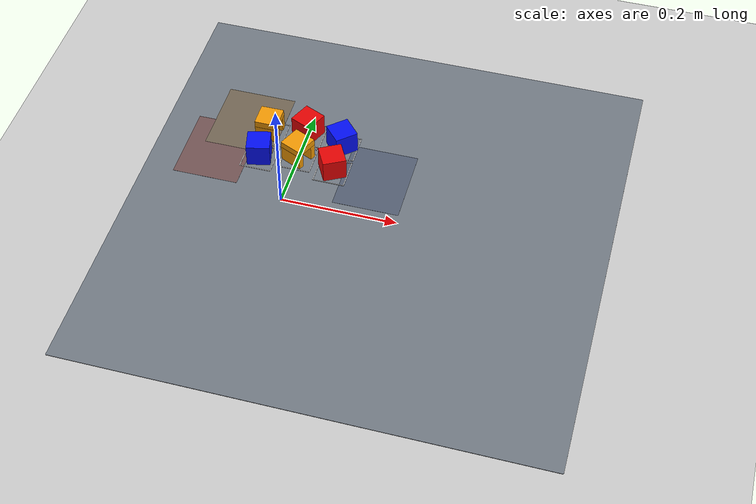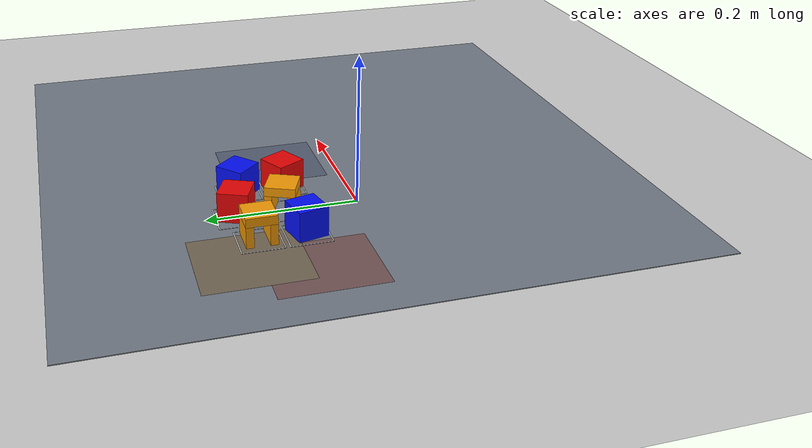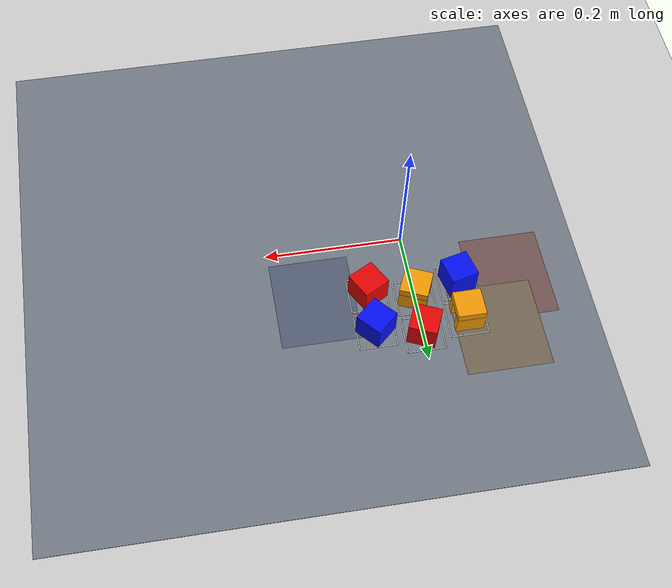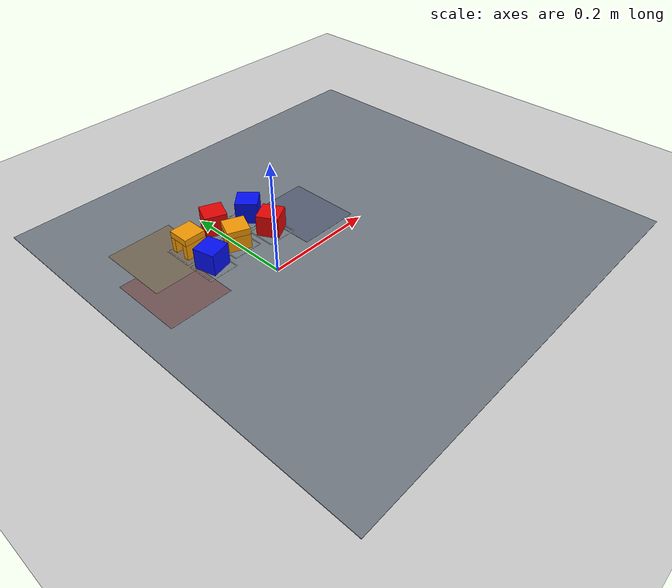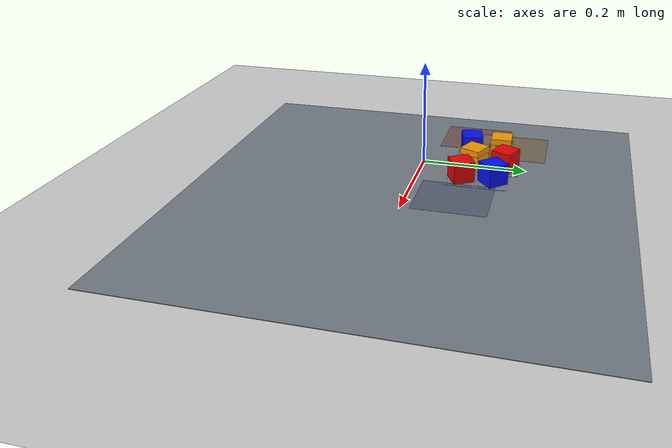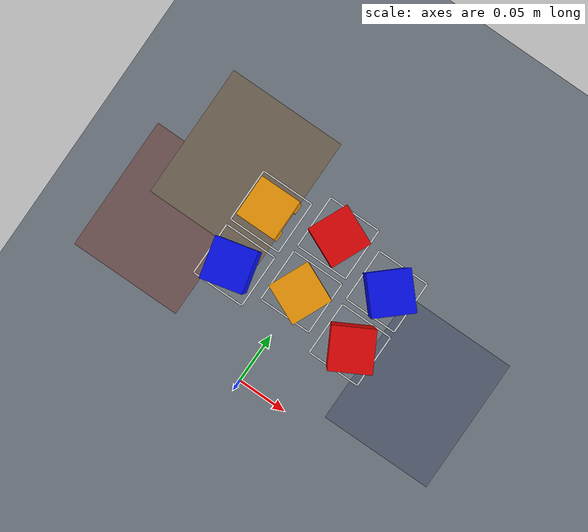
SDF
<?xml version='1.0' encoding='utf-8'?>
<sdf version="1.6">
  <world name="task3_sorting">
    <gui fullscreen="0">
      <camera name="task2_camera">
        <pose>0.62 -0.62 0.57 0 0.58 2.35</pose>
        <view_controller>orbit</view_controller>
      </camera>
    </gui>
    <gravity>0 0 -9.81</gravity>
    <physics name="task2_ode" default="1" type="ode">
      <max_step_size>0.001</max_step_size>
      <real_time_update_rate>1000</real_time_update_rate>
      <real_time_factor>1.0</real_time_factor>
      <ode>
        <solver>
          <type>quick</type>
          <iters>80</iters>
          <sor>1.3</sor>
        </solver>
      </ode>
    </physics>

    <include>
      <uri>model://sun</uri>
    </include>
    <include>
      <uri>model://ground_plane</uri>
    </include>

    <plugin name="gazebo_ros_state" filename="libgazebo_ros_state.so">
      <ros><namespace>/gazebo</namespace></ros>
      <update_rate>30.0</update_rate>
    </plugin>

    <model name="task2_table">
      <static>true</static>
      <pose>0.15 0 -0.025 0 0 0</pose>
      <link name="link">
        <collision name="collision">
          <geometry><box><size>0.8 0.8 0.05</size></box></geometry>
          <surface>
            <friction><ode><mu>1.0</mu><mu2>1.0</mu2></ode></friction>
          </surface>
        </collision>
        <visual name="visual">
          <geometry><box><size>0.8 0.8 0.05</size></box></geometry>
          <material><ambient>0.35 0.38 0.42 1</ambient><diffuse>0.45 0.48 0.52 1</diffuse></material>
        </visual>
      </link>
    </model>

    <model name="grid_1_0_-1"><static>true</static><pose>-0.092 0.085 0.0003 0 0 0</pose><link name="link"><inertial><mass>0.05</mass><inertia><ixx>0.00001333</ixx><iyy>0.00001333</iyy><izz>0.00001333</izz></inertia></inertial><visual name="visual"><geometry><box><size>0.0015 0.054 0.0005</size></box></geometry><material><ambient>0.85 0.85 0.85 1</ambient><diffuse>0.85 0.85 0.85 1</diffuse></material></visual></link></model><model name="grid_1_0_1"><static>true</static><pose>-0.038000000000000006 0.085 0.0003 0 0 0</pose><link name="link"><inertial><mass>0.05</mass><inertia><ixx>0.00001333</ixx><iyy>0.00001333</iyy><izz>0.00001333</izz></inertia></inertial><visual name="visual"><geometry><box><size>0.0015 0.054 0.0005</size></box></geometry><material><ambient>0.85 0.85 0.85 1</ambient><diffuse>0.85 0.85 0.85 1</diffuse></material></visual></link></model><model name="grid_1_1_-1"><static>true</static><pose>-0.065 0.05800000000000001 0.0003 0 0 0</pose><link name="link"><inertial><mass>0.05</mass><inertia><ixx>0.00001333</ixx><iyy>0.00001333</iyy><izz>0.00001333</izz></inertia></inertial><visual name="visual"><geometry><box><size>0.054 0.0015 0.0005</size></box></geometry><material><ambient>0.85 0.85 0.85 1</ambient><diffuse>0.85 0.85 0.85 1</diffuse></material></visual></link></model><model name="grid_1_1_1"><static>true</static><pose>-0.065 0.112 0.0003 0 0 0</pose><link name="link"><inertial><mass>0.05</mass><inertia><ixx>0.00001333</ixx><iyy>0.00001333</iyy><izz>0.00001333</izz></inertia></inertial><visual name="visual"><geometry><box><size>0.054 0.0015 0.0005</size></box></geometry><material><ambient>0.85 0.85 0.85 1</ambient><diffuse>0.85 0.85 0.85 1</diffuse></material></visual></link></model><model name="task3_object_1"><static>false</static><pose>-0.065 0.085 0.022 0 0 1.8054186283164415</pose><link name="link"><inertial><mass>0.05</mass><inertia><ixx>0.00001333</ixx><iyy>0.00001333</iyy><izz>0.00001333</izz></inertia></inertial><collision name="collision"><geometry><box><size>0.04 0.04 0.04</size></box></geometry><surface><friction><ode><mu>1</mu><mu2>1</mu2></ode></friction></surface></collision><visual name="visual"><geometry><box><size>0.04 0.04 0.04</size></box></geometry><material><ambient>0.015 0.06 0.95 1</ambient><diffuse>0.015 0.06 0.95 1</diffuse></material></visual></link></model><model name="grid_2_0_-1"><static>true</static><pose>-0.027 0.1 0.0003 0 0 0</pose><link name="link"><inertial><mass>0.05</mass><inertia><ixx>0.00001333</ixx><iyy>0.00001333</iyy><izz>0.00001333</izz></inertia></inertial><visual name="visual"><geometry><box><size>0.0015 0.054 0.0005</size></box></geometry><material><ambient>0.85 0.85 0.85 1</ambient><diffuse>0.85 0.85 0.85 1</diffuse></material></visual></link></model><model name="grid_2_0_1"><static>true</static><pose>0.027 0.1 0.0003 0 0 0</pose><link name="link"><inertial><mass>0.05</mass><inertia><ixx>0.00001333</ixx><iyy>0.00001333</iyy><izz>0.00001333</izz></inertia></inertial><visual name="visual"><geometry><box><size>0.0015 0.054 0.0005</size></box></geometry><material><ambient>0.85 0.85 0.85 1</ambient><diffuse>0.85 0.85 0.85 1</diffuse></material></visual></link></model><model name="grid_2_1_-1"><static>true</static><pose>0.0 0.07300000000000001 0.0003 0 0 0</pose><link name="link"><inertial><mass>0.05</mass><inertia><ixx>0.00001333</ixx><iyy>0.00001333</iyy><izz>0.00001333</izz></inertia></inertial><visual name="visual"><geometry><box><size>0.054 0.0015 0.0005</size></box></geometry><material><ambient>0.85 0.85 0.85 1</ambient><diffuse>0.85 0.85 0.85 1</diffuse></material></visual></link></model><model name="grid_2_1_1"><static>true</static><pose>0.0 0.127 0.0003 0 0 0</pose><link name="link"><inertial><mass>0.05</mass><inertia><ixx>0.00001333</ixx><iyy>0.00001333</iyy><izz>0.00001333</izz></inertia></inertial><visual name="visual"><geometry><box><size>0.054 0.0015 0.0005</size></box></geometry><material><ambient>0.85 0.85 0.85 1</ambient><diffuse>0.85 0.85 0.85 1</diffuse></material></visual></link></model><model name="task3_object_2"><static>false</static><pose>0.0 0.1 0.022 0 0 1.1525719972156674</pose><link name="link"><inertial><mass>0.05</mass><inertia><ixx>1.3672978303747534e-05</ixx><iyy>1.6365285996055224e-05</iyy><izz>1.6025641025641026e-05</izz></inertia><pose>0 0 0.0032307692307692298 0 0 0</pose></inertial><collision name="beam_collision"><geometry><box><size>0.04 0.04 0.012</size></box></geometry><surface><friction><ode><mu>1</mu><mu2>1</mu2></ode></friction></surface><pose>0 0 0.014 0 0 0</pose></collision><visual name="beam_visual"><geometry><box><size>0.04 0.04 0.012</size></box></geometry><material><ambient>0.95 0.6 0.015 1</ambient><diffuse>0.95 0.6 0.015 1</diffuse></material><pose>0 0 0.014 0 0 0</pose></visual><collision name="left_leg_collision"><geometry><box><size>0.01 0.04 0.028</size></box></geometry><surface><friction><ode><mu>1</mu><mu2>1</mu2></ode></friction></surface><pose>-0.015 0 -0.006 0 0 0</pose></collision><visual name="left_leg_visual"><geometry><box><size>0.01 0.04 0.028</size></box></geometry><material><ambient>0.95 0.6 0.015 1</ambient><diffuse>0.95 0.6 0.015 1</diffuse></material><pose>-0.015 0 -0.006 0 0 0</pose></visual><collision name="right_leg_collision"><geometry><box><size>0.01 0.04 0.028</size></box></geometry><surface><friction><ode><mu>1</mu><mu2>1</mu2></ode></friction></surface><pose>0.015 0 -0.006 0 0 0</pose></collision><visual name="right_leg_visual"><geometry><box><size>0.01 0.04 0.028</size></box></geometry><material><ambient>0.95 0.6 0.015 1</ambient><diffuse>0.95 0.6 0.015 1</diffuse></material><pose>0.015 0 -0.006 0 0 0</pose></visual></link></model><model name="grid_3_0_-1"><static>true</static><pose>0.038000000000000006 0.085 0.0003 0 0 0</pose><link name="link"><inertial><mass>0.05</mass><inertia><ixx>0.00001333</ixx><iyy>0.00001333</iyy><izz>0.00001333</izz></inertia></inertial><visual name="visual"><geometry><box><size>0.0015 0.054 0.0005</size></box></geometry><material><ambient>0.85 0.85 0.85 1</ambient><diffuse>0.85 0.85 0.85 1</diffuse></material></visual></link></model><model name="grid_3_0_1"><static>true</static><pose>0.092 0.085 0.0003 0 0 0</pose><link name="link"><inertial><mass>0.05</mass><inertia><ixx>0.00001333</ixx><iyy>0.00001333</iyy><izz>0.00001333</izz></inertia></inertial><visual name="visual"><geometry><box><size>0.0015 0.054 0.0005</size></box></geometry><material><ambient>0.85 0.85 0.85 1</ambient><diffuse>0.85 0.85 0.85 1</diffuse></material></visual></link></model><model name="grid_3_1_-1"><static>true</static><pose>0.065 0.05800000000000001 0.0003 0 0 0</pose><link name="link"><inertial><mass>0.05</mass><inertia><ixx>0.00001333</ixx><iyy>0.00001333</iyy><izz>0.00001333</izz></inertia></inertial><visual name="visual"><geometry><box><size>0.054 0.0015 0.0005</size></box></geometry><material><ambient>0.85 0.85 0.85 1</ambient><diffuse>0.85 0.85 0.85 1</diffuse></material></visual></link></model><model name="grid_3_1_1"><static>true</static><pose>0.065 0.112 0.0003 0 0 0</pose><link name="link"><inertial><mass>0.05</mass><inertia><ixx>0.00001333</ixx><iyy>0.00001333</iyy><izz>0.00001333</izz></inertia></inertial><visual name="visual"><geometry><box><size>0.054 0.0015 0.0005</size></box></geometry><material><ambient>0.85 0.85 0.85 1</ambient><diffuse>0.85 0.85 0.85 1</diffuse></material></visual></link></model><model name="task3_object_3"><static>false</static><pose>0.065 0.085 0.022 0 0 0.4997253661148932</pose><link name="link"><inertial><mass>0.05</mass><inertia><ixx>0.00001333</ixx><iyy>0.00001333</iyy><izz>0.00001333</izz></inertia></inertial><collision name="collision"><geometry><box><size>0.04 0.04 0.04</size></box></geometry><surface><friction><ode><mu>1</mu><mu2>1</mu2></ode></friction></surface></collision><visual name="visual"><geometry><box><size>0.04 0.04 0.04</size></box></geometry><material><ambient>0.9 0.015 0.015 1</ambient><diffuse>0.9 0.015 0.015 1</diffuse></material></visual></link></model><model name="grid_4_0_-1"><static>true</static><pose>-0.092 0.145 0.0003 0 0 0</pose><link name="link"><inertial><mass>0.05</mass><inertia><ixx>0.00001333</ixx><iyy>0.00001333</iyy><izz>0.00001333</izz></inertia></inertial><visual name="visual"><geometry><box><size>0.0015 0.054 0.0005</size></box></geometry><material><ambient>0.85 0.85 0.85 1</ambient><diffuse>0.85 0.85 0.85 1</diffuse></material></visual></link></model><model name="grid_4_0_1"><static>true</static><pose>-0.038000000000000006 0.145 0.0003 0 0 0</pose><link name="link"><inertial><mass>0.05</mass><inertia><ixx>0.00001333</ixx><iyy>0.00001333</iyy><izz>0.00001333</izz></inertia></inertial><visual name="visual"><geometry><box><size>0.0015 0.054 0.0005</size></box></geometry><material><ambient>0.85 0.85 0.85 1</ambient><diffuse>0.85 0.85 0.85 1</diffuse></material></visual></link></model><model name="grid_4_1_-1"><static>true</static><pose>-0.065 0.118 0.0003 0 0 0</pose><link name="link"><inertial><mass>0.05</mass><inertia><ixx>0.00001333</ixx><iyy>0.00001333</iyy><izz>0.00001333</izz></inertia></inertial><visual name="visual"><geometry><box><size>0.054 0.0015 0.0005</size></box></geometry><material><ambient>0.85 0.85 0.85 1</ambient><diffuse>0.85 0.85 0.85 1</diffuse></material></visual></link></model><model name="grid_4_1_1"><static>true</static><pose>-0.065 0.172 0.0003 0 0 0</pose><link name="link"><inertial><mass>0.05</mass><inertia><ixx>0.00001333</ixx><iyy>0.00001333</iyy><izz>0.00001333</izz></inertia></inertial><visual name="visual"><geometry><box><size>0.054 0.0015 0.0005</size></box></geometry><material><ambient>0.85 0.85 0.85 1</ambient><diffuse>0.85 0.85 0.85 1</diffuse></material></visual></link></model><model name="task3_object_4"><static>false</static><pose>-0.065 0.145 0.022 0 0 1.5739912041034716</pose><link name="link"><inertial><mass>0.05</mass><inertia><ixx>1.3672978303747534e-05</ixx><iyy>1.6365285996055224e-05</iyy><izz>1.6025641025641026e-05</izz></inertia><pose>0 0 0.0032307692307692298 0 0 0</pose></inertial><collision name="beam_collision"><geometry><box><size>0.04 0.04 0.012</size></box></geometry><surface><friction><ode><mu>1</mu><mu2>1</mu2></ode></friction></surface><pose>0 0 0.014 0 0 0</pose></collision><visual name="beam_visual"><geometry><box><size>0.04 0.04 0.012</size></box></geometry><material><ambient>0.95 0.6 0.015 1</ambient><diffuse>0.95 0.6 0.015 1</diffuse></material><pose>0 0 0.014 0 0 0</pose></visual><collision name="left_leg_collision"><geometry><box><size>0.01 0.04 0.028</size></box></geometry><surface><friction><ode><mu>1</mu><mu2>1</mu2></ode></friction></surface><pose>-0.015 0 -0.006 0 0 0</pose></collision><visual name="left_leg_visual"><geometry><box><size>0.01 0.04 0.028</size></box></geometry><material><ambient>0.95 0.6 0.015 1</ambient><diffuse>0.95 0.6 0.015 1</diffuse></material><pose>-0.015 0 -0.006 0 0 0</pose></visual><collision name="right_leg_collision"><geometry><box><size>0.01 0.04 0.028</size></box></geometry><surface><friction><ode><mu>1</mu><mu2>1</mu2></ode></friction></surface><pose>0.015 0 -0.006 0 0 0</pose></collision><visual name="right_leg_visual"><geometry><box><size>0.01 0.04 0.028</size></box></geometry><material><ambient>0.95 0.6 0.015 1</ambient><diffuse>0.95 0.6 0.015 1</diffuse></material><pose>0.015 0 -0.006 0 0 0</pose></visual></link></model><model name="grid_5_0_-1"><static>true</static><pose>-0.027 0.16 0.0003 0 0 0</pose><link name="link"><inertial><mass>0.05</mass><inertia><ixx>0.00001333</ixx><iyy>0.00001333</iyy><izz>0.00001333</izz></inertia></inertial><visual name="visual"><geometry><box><size>0.0015 0.054 0.0005</size></box></geometry><material><ambient>0.85 0.85 0.85 1</ambient><diffuse>0.85 0.85 0.85 1</diffuse></material></visual></link></model><model name="grid_5_0_1"><static>true</static><pose>0.027 0.16 0.0003 0 0 0</pose><link name="link"><inertial><mass>0.05</mass><inertia><ixx>0.00001333</ixx><iyy>0.00001333</iyy><izz>0.00001333</izz></inertia></inertial><visual name="visual"><geometry><box><size>0.0015 0.054 0.0005</size></box></geometry><material><ambient>0.85 0.85 0.85 1</ambient><diffuse>0.85 0.85 0.85 1</diffuse></material></visual></link></model><model name="grid_5_1_-1"><static>true</static><pose>0.0 0.133 0.0003 0 0 0</pose><link name="link"><inertial><mass>0.05</mass><inertia><ixx>0.00001333</ixx><iyy>0.00001333</iyy><izz>0.00001333</izz></inertia></inertial><visual name="visual"><geometry><box><size>0.054 0.0015 0.0005</size></box></geometry><material><ambient>0.85 0.85 0.85 1</ambient><diffuse>0.85 0.85 0.85 1</diffuse></material></visual></link></model><model name="grid_5_1_1"><static>true</static><pose>0.0 0.187 0.0003 0 0 0</pose><link name="link"><inertial><mass>0.05</mass><inertia><ixx>0.00001333</ixx><iyy>0.00001333</iyy><izz>0.00001333</izz></inertia></inertial><visual name="visual"><geometry><box><size>0.054 0.0015 0.0005</size></box></geometry><material><ambient>0.85 0.85 0.85 1</ambient><diffuse>0.85 0.85 0.85 1</diffuse></material></visual></link></model><model name="task3_object_5"><static>false</static><pose>0.0 0.16 0.022 0 0 1.1525719972156674</pose><link name="link"><inertial><mass>0.05</mass><inertia><ixx>0.00001333</ixx><iyy>0.00001333</iyy><izz>0.00001333</izz></inertia></inertial><collision name="collision"><geometry><box><size>0.04 0.04 0.04</size></box></geometry><surface><friction><ode><mu>1</mu><mu2>1</mu2></ode></friction></surface></collision><visual name="visual"><geometry><box><size>0.04 0.04 0.04</size></box></geometry><material><ambient>0.9 0.015 0.015 1</ambient><diffuse>0.9 0.015 0.015 1</diffuse></material></visual></link></model><model name="grid_6_0_-1"><static>true</static><pose>0.038000000000000006 0.145 0.0003 0 0 0</pose><link name="link"><inertial><mass>0.05</mass><inertia><ixx>0.00001333</ixx><iyy>0.00001333</iyy><izz>0.00001333</izz></inertia></inertial><visual name="visual"><geometry><box><size>0.0015 0.054 0.0005</size></box></geometry><material><ambient>0.85 0.85 0.85 1</ambient><diffuse>0.85 0.85 0.85 1</diffuse></material></visual></link></model><model name="grid_6_0_1"><static>true</static><pose>0.092 0.145 0.0003 0 0 0</pose><link name="link"><inertial><mass>0.05</mass><inertia><ixx>0.00001333</ixx><iyy>0.00001333</iyy><izz>0.00001333</izz></inertia></inertial><visual name="visual"><geometry><box><size>0.0015 0.054 0.0005</size></box></geometry><material><ambient>0.85 0.85 0.85 1</ambient><diffuse>0.85 0.85 0.85 1</diffuse></material></visual></link></model><model name="grid_6_1_-1"><static>true</static><pose>0.065 0.118 0.0003 0 0 0</pose><link name="link"><inertial><mass>0.05</mass><inertia><ixx>0.00001333</ixx><iyy>0.00001333</iyy><izz>0.00001333</izz></inertia></inertial><visual name="visual"><geometry><box><size>0.054 0.0015 0.0005</size></box></geometry><material><ambient>0.85 0.85 0.85 1</ambient><diffuse>0.85 0.85 0.85 1</diffuse></material></visual></link></model><model name="grid_6_1_1"><static>true</static><pose>0.065 0.172 0.0003 0 0 0</pose><link name="link"><inertial><mass>0.05</mass><inertia><ixx>0.00001333</ixx><iyy>0.00001333</iyy><izz>0.00001333</izz></inertia></inertial><visual name="visual"><geometry><box><size>0.054 0.0015 0.0005</size></box></geometry><material><ambient>0.85 0.85 0.85 1</ambient><diffuse>0.85 0.85 0.85 1</diffuse></material></visual></link></model><model name="task3_object_6"><static>false</static><pose>0.065 0.145 0.022 0 0 0.7311527903278632</pose><link name="link"><inertial><mass>0.05</mass><inertia><ixx>0.00001333</ixx><iyy>0.00001333</iyy><izz>0.00001333</izz></inertia></inertial><collision name="collision"><geometry><box><size>0.04 0.04 0.04</size></box></geometry><surface><friction><ode><mu>1</mu><mu2>1</mu2></ode></friction></surface></collision><visual name="visual"><geometry><box><size>0.04 0.04 0.04</size></box></geometry><material><ambient>0.015 0.06 0.95 1</ambient><diffuse>0.015 0.06 0.95 1</diffuse></material></visual></link></model><model name="bridge_bin"><static>true</static><pose>-0.10750000000000001 0.16499999999999998 0.0001 0 0 0</pose><link name="link"><inertial><mass>0.05</mass><inertia><ixx>0.00001333</ixx><iyy>0.00001333</iyy><izz>0.00001333</izz></inertia></inertial><visual name="visual"><geometry><box><size>0.12100000000000002 0.13599999999999998 0.0001</size></box></geometry><material><ambient>0.45 0.40 0.33 1</ambient><diffuse>0.45 0.40 0.33 1</diffuse></material></visual></link></model><model name="red_bin"><static>true</static><pose>-0.14100000000000001 0.08499999999999999 0.0001 0 0 0</pose><link name="link"><inertial><mass>0.05</mass><inertia><ixx>0.00001333</ixx><iyy>0.00001333</iyy><izz>0.00001333</izz></inertia></inertial><visual name="visual"><geometry><box><size>0.11400000000000002 0.136 0.0001</size></box></geometry><material><ambient>0.45 0.33 0.33 1</ambient><diffuse>0.45 0.33 0.33 1</diffuse></material></visual></link></model><model name="blue_bin"><static>true</static><pose>0.14100000000000001 0.08499999999999999 0.0001 0 0 0</pose><link name="link"><inertial><mass>0.05</mass><inertia><ixx>0.00001333</ixx><iyy>0.00001333</iyy><izz>0.00001333</izz></inertia></inertial><visual name="visual"><geometry><box><size>0.11400000000000002 0.136 0.0001</size></box></geometry><material><ambient>0.33 0.37 0.45 1</ambient><diffuse>0.33 0.37 0.45 1</diffuse></material></visual></link></model><model name="task3_overhead"><static>true</static><pose>0.0 0.055 0.65 0 1.57079632679 1.57079632679</pose><link name="camera_link"><sensor name="overhead" type="camera"><always_on>true</always_on><update_rate>8</update_rate><visualize>false</visualize><camera><horizontal_fov>1.0</horizontal_fov><image><width>960</width><height>720</height><format>R8G8B8</format></image><clip><near>0.02</near><far>5</far></clip></camera><plugin name="task3_camera" filename="libgazebo_ros_camera.so"><ros><namespace>/task3/camera</namespace><remapping>image_raw:=image_raw</remapping><remapping>camera_info:=camera_info</remapping></ros><camera_name>overhead</camera_name><frame_name>task3_camera_optical</frame_name></plugin></sensor></link></model></world>
</sdf>
